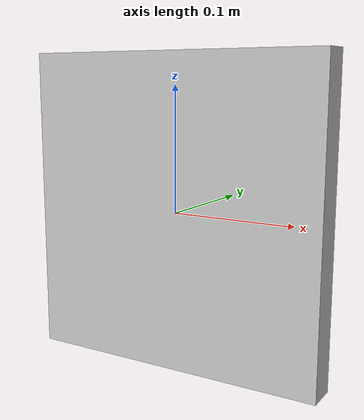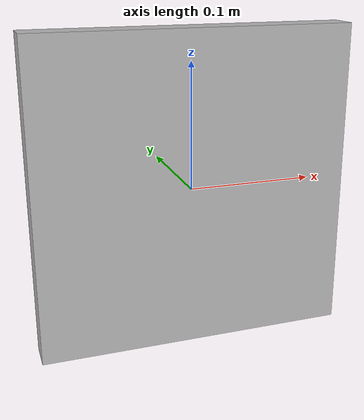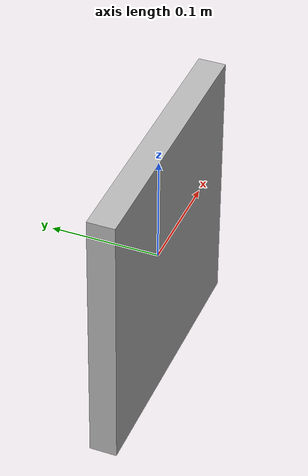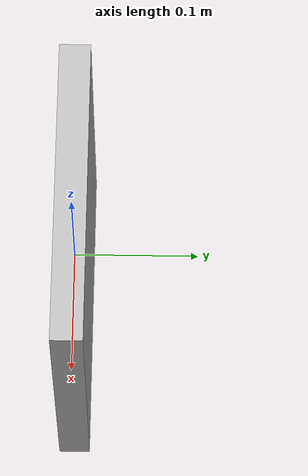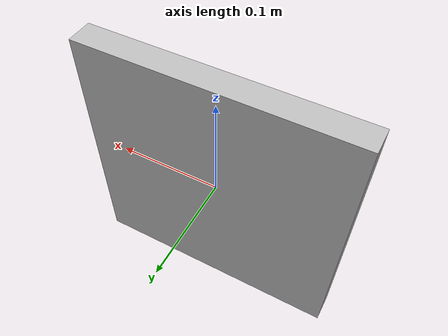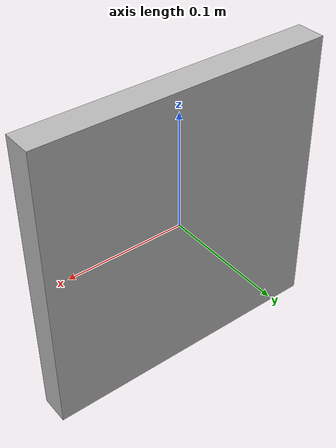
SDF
<?xml version="1.0" ?>
<sdf version="1.6">
  <model name="alvar1">
    <static>true</static>
    <link name="box">
      <pose>0 0 0 0 0 0</pose>
      <collision name="collision">
        <geometry>
          <box>
            <size>0.25 0.025 0.25</size>
          </box>
        </geometry>
      </collision>
      <visual name="visual">
        <geometry>
          <box>
            <size>0.25 0.025 0.25</size>
          </box>
        </geometry>
        <material>
          <script>
            <uri>model://mundoteste/alvar1/materials/scripts</uri>
            <uri>model://mundoteste/alvar1/materials/textures</uri>
            <name>alvar1</name>
          </script>
        </material>
      </visual>
    </link>
  </model>
</sdf>
